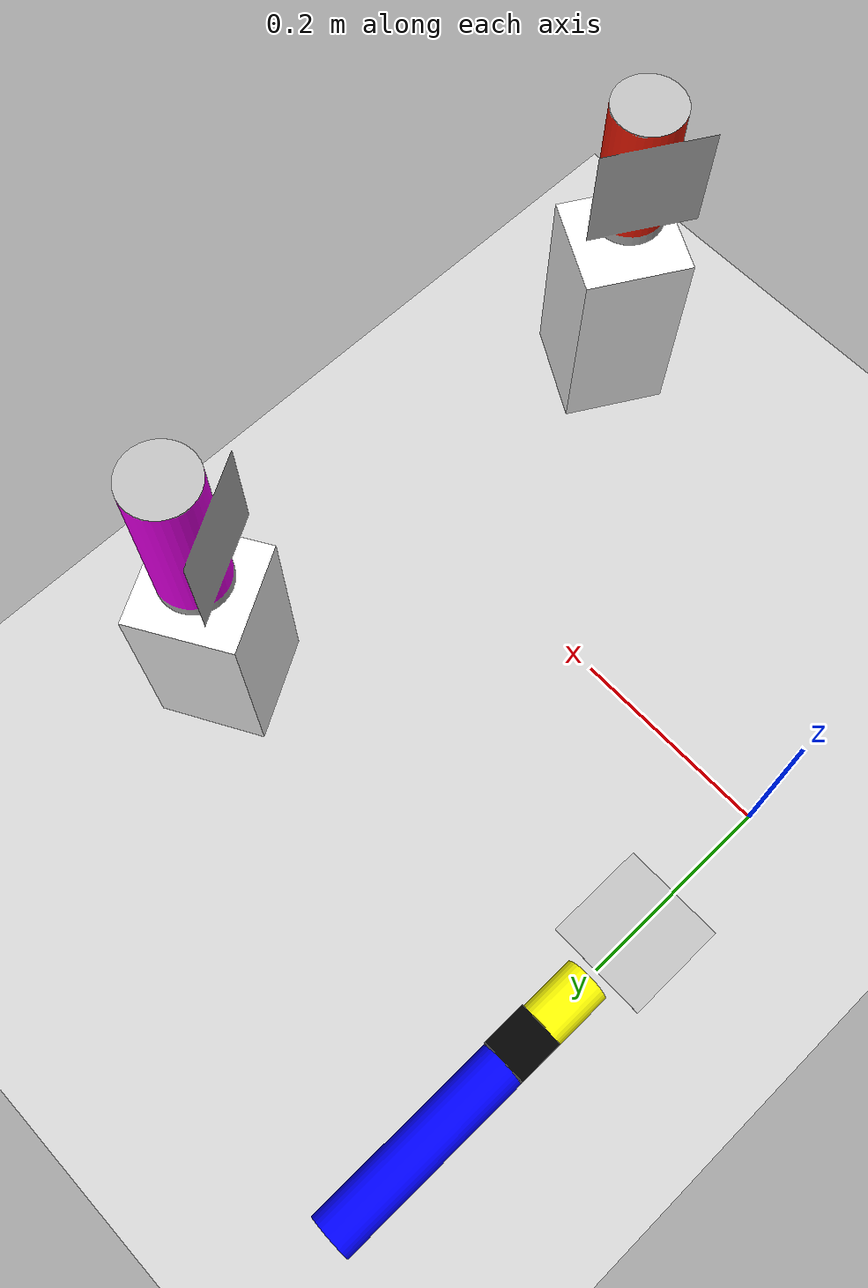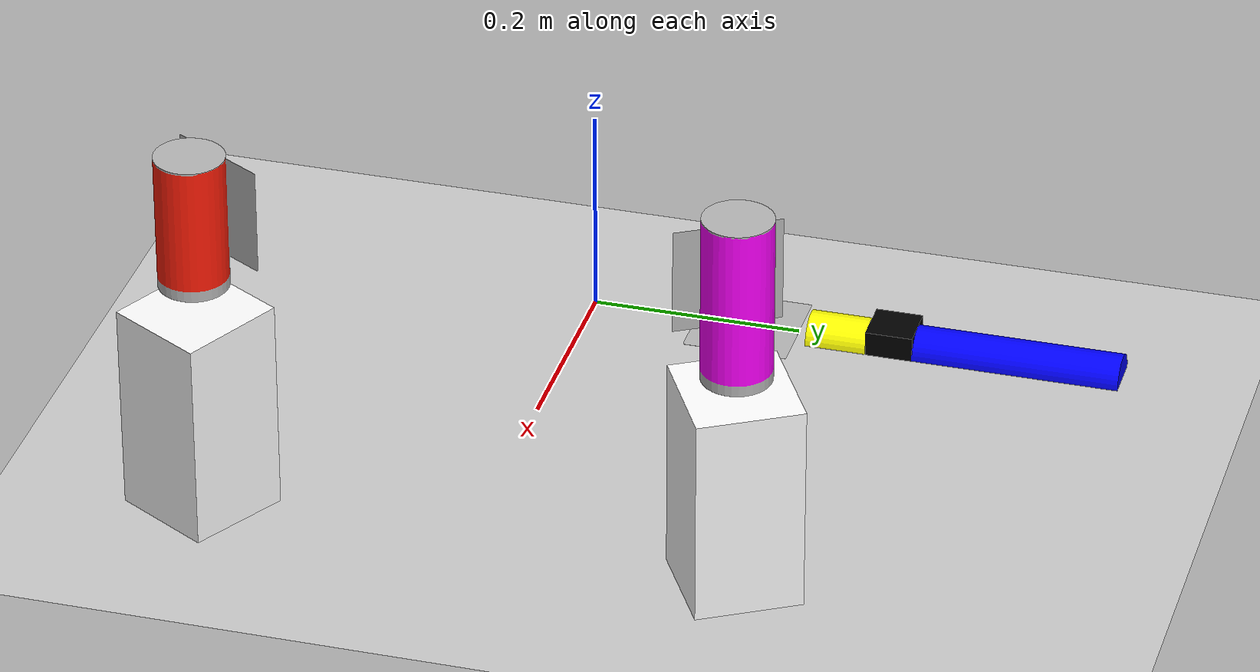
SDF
<?xml version="1.0" ?>
<sdf version="1.6">
  <world name="CRANE-X7 with Table">
    <scene>
      <shadows>0</shadows>
    </scene>

    <include>
      <uri>model://sun</uri>
    </include>

   <model name="can_id3">
      <include>
        <uri>model://can_id3</uri>
      </include>
      <pose>0.43 0.25 0.3 0 0 0.52</pose>
    </model>

    <model name="stand">
      <include>
        <uri>model://stand</uri>
      </include>
      <pose>0.43 -0.25 0 0 0 -0.52</pose>
    </model>

   <model name="dislike_id10">
      <include>
        <uri>model://dislike_id10</uri>
      </include>
      <pose>0.43 -0.25 0.3 0 0 -0.52</pose>
    </model>

    <model name="stand01">
      <include>
        <uri>model://stand</uri>
      </include>
      <pose>0.43 0.25 0 0 0 0.52</pose>
    </model>

    <model name="club">
      <include>
        <uri>model://club</uri>
      </include>
      <pose>0 0.1925 0 -1.57 0 0</pose>
    </model>

    <model name="club_ARmarker">
      <include>
        <uri>model://ARmarker_id06</uri>
      </include>
      <pose>0 0.15 0 0 0 0</pose>
    </model>

    <light name='point_light_0' type='point'>
      <pose frame=''>-0.5 0 1.0 0 0 0</pose>
      <diffuse>0.4 0.4 0.4 1</diffuse>
      <specular>0.02 0.02 0.02 1</specular>
      <attenuation>
        <range>20</range>
        <constant>0.5</constant>
        <linear>0.01</linear>
        <quadratic>0.001</quadratic>
      </attenuation>
      <cast_shadows>0</cast_shadows>
      <direction>0 0 -1</direction>
    </light>

    <model name="ground_plane">
      <include>
        <uri>model://ground_plane</uri>
      </include>
      <joint name='ground_joint' type='fixed'>
        <parent>ground_plane::link</parent>
        <child>table::link</child>
      </joint>
    </model>

  </world>
</sdf>

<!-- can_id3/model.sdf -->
<sdf version="1.4">
<model name="can_id1">
  <pose>0 0 0 0 0 3.14</pose>
    <link name="link">
      <inertial>
        <mass>0.02</mass>
        <inertia>
          <ixx>5.345e-5</ixx>
          <ixy>0.0</ixy>
          <ixz>0.0</ixz>
          <iyy>5.345e-5</iyy>
          <iyz>0.0</iyz>
          <izz>1.056e-5</izz>
        </inertia>
      </inertial>
      <collision name="collision">
        <geometry>
          <mesh>
            <uri>model://can_id3/meshes/can_id3.dae</uri>
          </mesh>
        </geometry>
      </collision>
      <visual name="visual">
        <geometry>
          <mesh>
          <uri>model://can_id3/meshes/can_id3.dae</uri>
          </mesh>
        </geometry>
      </visual>
    </link>
  </model>
</sdf>

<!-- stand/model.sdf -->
<sdf version="1.4">
<model name="stand">
  <pose>0 0 0 0 0 0</pose>
  <static>true</static>
    <link name="link">
      <inertial>
        <mass>1.0</mass>
        <inertia>
          <ixx>0.081</ixx>
          <ixy>0.0</ixy>
          <ixz>0.0</ixz>
          <iyy>0.081</iyy>
          <iyz>0.0</iyz>
          <izz>0.081</izz>
        </inertia>
      </inertial>
      <collision name="collision">
        <geometry>
          <mesh>
            <uri>model://stand/meshes/stand.dae</uri>
          </mesh>
        </geometry>
      </collision>
      <visual name="visual">
        <geometry>
          <mesh>
          <uri>model://stand/meshes/stand.dae</uri>
          </mesh>
        </geometry>
      </visual>
    </link>
  </model>
</sdf>

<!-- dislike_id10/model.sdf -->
<sdf version="1.4">
<model name="dislike_id10">
  <pose>0 0 0 0 0 3.14</pose>
    <link name="link">
      <inertial>
        <mass>0.015</mass>
        <inertia>
          <ixx>1.646e-5</ixx>
          <ixy>0.0</ixy>
          <ixz>0.0</ixz>
          <iyy>1.646e-5</iyy>
          <iyz>0.0</iyz>
          <izz>7.922e-6</izz>
        </inertia>
      </inertial>
      <collision name="collision">
        <geometry>
          <mesh>
            <uri>model://dislike_id10/meshes/dislike_id10.dae</uri>
          </mesh>
        </geometry>
      </collision>
      <visual name="visual">
        <geometry>
          <mesh>
          <uri>model://dislike_id10/meshes/dislike_id10.dae</uri>
          </mesh>
        </geometry>
      </visual>
    </link>
  </model>
</sdf>

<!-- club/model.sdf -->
<sdf version="1.4">
<model name="club">
  <pose>0 0 0.04 0 0 0</pose>
    <link name="link">
      <inertial>
        <mass>0.1</mass>
        <inertia>
          <ixx>3e-3</ixx>
          <ixy>0.0</ixy>
          <ixz>0.0</ixz>
          <iyy>3e-3</iyy>
          <iyz>0.0</iyz>
          <izz>2.53125e-5</izz>

        </inertia>
      </inertial>
      <collision name="collision">
        <geometry>
          <mesh>
            <uri>model://club/meshes/club.dae</uri>
          </mesh>
        </geometry>
        <surface>
          <contact>
            <poissons_ratio>0.347</poissons_ratio>
            <elastic_modulus>8.8e+09</elastic_modulus>
            <ode>
              <kp>100000</kp>
              <kd>1</kd>
              <max_vel>1.0</max_vel>
              <min_depth>0.001</min_depth>
            </ode>
          </contact>
          <friction>
            <torsional>
              <coefficient>1.0</coefficient>
              <use_patch_radius>0</use_patch_radius>
              <surface_radius>0.065</surface_radius>
            </torsional>
          </friction>
        </surface>
      </collision>
      <visual name="visual">
        <geometry>
          <mesh>
          <uri>model://club/meshes/club.dae</uri>
          </mesh>
        </geometry>
      </visual>
    </link>
  </model>
</sdf>

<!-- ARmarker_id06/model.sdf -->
<sdf version="1.4">
<model name="ARmarker_id06">
  <pose>0 0 0 0 0 0</pose>
    <link name="link">
      <inertial>
        <mass>1.0</mass>
        <inertia>
          <ixx>0.1</ixx>
          <ixy>0.0</ixy>
          <ixz>0.0</ixz>
          <iyy>0.1</iyy>
          <iyz>0.0</iyz>
          <izz>0.1</izz>
        </inertia>
      </inertial>
      <collision name="collision">
        <geometry>
          <mesh>
            <uri>model://ARmarker_id06/meshes/ARmarker_id06.dae</uri>
          </mesh>
        </geometry>
      </collision>
      <visual name="visual">
        <geometry>
          <mesh>
          <uri>model://ARmarker_id06/meshes/ARmarker_id06.dae</uri>
          </mesh>
        </geometry>
      </visual>
    </link>
  </model>
</sdf>
